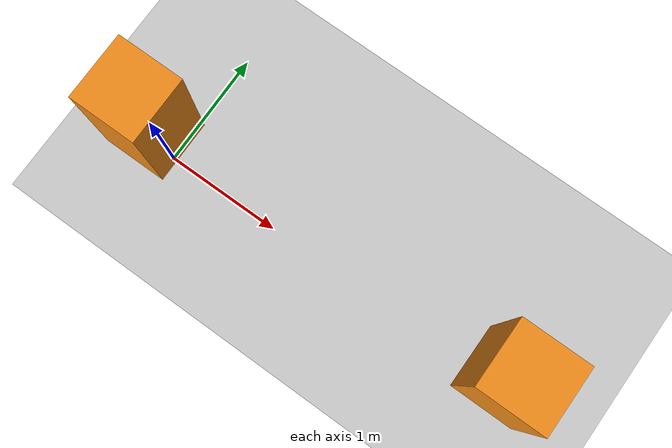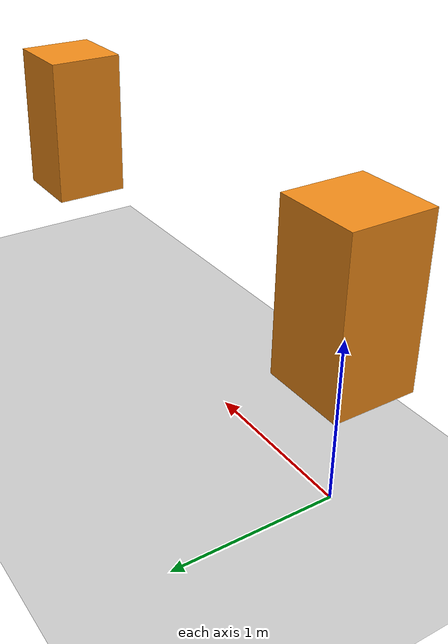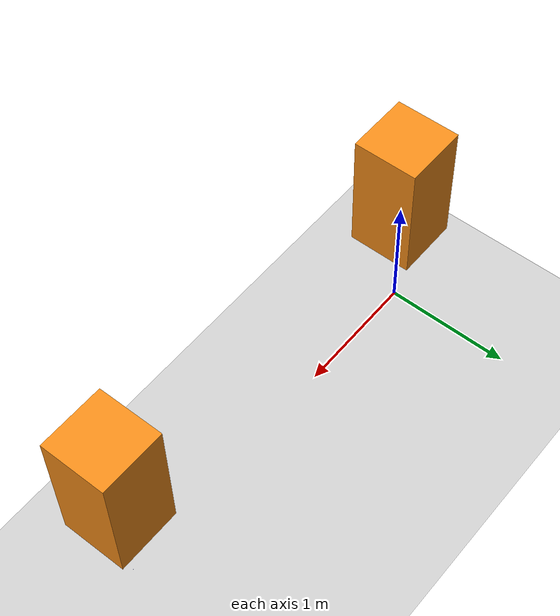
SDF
<sdf version="1.6">
 <world name="default">
  <light name="sun" type="directional">
   <pose>0 0 10 0 -0 0</pose>
   <diffuse>0.8 0.8 0.8 1</diffuse>
   <specular>0.1 0.1 0.1 1</specular>
   <attenuation>
    <range>1000</range>
    <constant>0.9</constant>
    <linear>0.01</linear>
    <quadratic>0.001</quadratic>
   </attenuation>
   <direction>-0.5 0.5 -1</direction>
  </light>
  <model name="ground_plane">
   <static>1</static>
   <link name="link">
    <collision name="collision">
     <geometry><plane><normal>0 0 1</normal><size>100 100</size></plane></geometry>
     <surface><friction><ode><mu>100</mu><mu2>50</mu2></ode></friction></surface>
    </collision>
    <visual name="visual">
     <cast_shadows>0</cast_shadows>
     <geometry><plane><normal>0 0 1</normal><size>100 100</size></plane></geometry>
     <material>
      <script><uri>file://media/materials/scripts/gazebo.material</uri><name>Gazebo/Grey</name></script>
     </material>
    </visual>
   </link>
  </model>
  <physics name="default_physics" default="0" type="ode">
   <max_step_size>0.01</max_step_size>
   <real_time_factor>1</real_time_factor>
   <real_time_update_rate>100</real_time_update_rate>
  </physics>
  <gravity>0 0 0</gravity>
  <magnetic_field>6e-06 2.3e-05 -4.2e-05</magnetic_field>
  <atmosphere type="adiabatic"/>
  <scene><ambient>0.4 0.4 0.4 1</ambient><background>0.7 0.7 0.7 1</background><shadows>1</shadows></scene>
  <spherical_coordinates>
   <surface_model>EARTH_WGS84</surface_model>
   <latitude_deg>0</latitude_deg>
   <longitude_deg>0</longitude_deg>
   <elevation>0</elevation>
   <heading_deg>0</heading_deg>
  </spherical_coordinates>
  <model name="floating_box">
   <link name="base_footprint">
    <inertial>
     <mass>100</mass>
     <inertia><ixx>100</ixx><ixy>0</ixy><ixz>0</ixz><iyy>100</iyy><iyz>0</iyz><izz>100</izz></inertia>
    </inertial>
    <collision name="base_footprint_fixed_joint_lump__base_link_collision">
     <pose>0 0 0.25 0 -0 0</pose>
     <geometry><cylinder><length>0.5</length><radius>0.25</radius></cylinder></geometry>
    </collision>
    <collision name="base_footprint_fixed_joint_lump__base_link_1_collision_1">
     <pose>0 0 0.25 0 -0 0</pose>
     <geometry><cylinder><length>0.5</length><radius>0.25</radius></cylinder></geometry>
    </collision>
    <visual name="base_footprint_visual">
     <geometry><box><size>0.001 0.001 0.001</size></box></geometry>
     <material>
      <script><name>Gazebo/Blue</name><uri>file://media/materials/scripts/gazebo.material</uri></script>
     </material>
    </visual>
    <visual name="base_footprint_fixed_joint_lump__base_link_visual_1">
     <pose>0 0 1.25 0 -0 0</pose>
     <geometry><box><size>0.5 0.5 1</size></box></geometry>
     <material>
      <script><name>Gazebo/Orange</name><uri>file://media/materials/scripts/gazebo.material</uri></script>
     </material>
    </visual>
    <visual name="base_footprint_fixed_joint_lump__base_link_1_visual_2">
     <pose>0 0 1.25 0 -0 0</pose>
     <geometry><box><size>0.5 0.5 1</size></box></geometry>
     <material>
      <script><name>Gazebo/Orange</name><uri>file://media/materials/scripts/gazebo.material</uri></script>
     </material>
    </visual>
   </link>
   <plugin name="gazebo_ros_force" filename="libgazebo_ros_force.so">
    <bodyName>base_footprint</bodyName>
    <link_name_>base_link</link_name_>
    <topicName>topic_name</topicName>
    <robotNamespace>/</robotNamespace>
   </plugin>
   <static>0</static>
   <plugin name="p3d_base_controller" filename="libgazebo_ros_p3d.so">
    <alwaysOn>true</alwaysOn>
    <updateRate>50.0</updateRate>
    <topicName>odom</topicName>
    <gaussianNoise>0.01</gaussianNoise>
    <frameName>world</frameName>
    <xyzOffsets>0 0 0</xyzOffsets>
    <rpyOffsets>0 0 0</rpyOffsets>
    <robotNamespace>/</robotNamespace>
    <bodyName>base_footprint</bodyName>
    <xyzOffset>0 0 -1.25</xyzOffset>
    <rpyOffset>0 -0 0</rpyOffset>
   </plugin>
  </model>
  <model name="floating_box_clone">
   <link name="base_footprint">
    <inertial>
     <mass>100</mass>
     <inertia><ixx>100</ixx><ixy>0</ixy><ixz>0</ixz><iyy>100</iyy><iyz>0</iyz><izz>100</izz></inertia>
    </inertial>
    <collision name="base_footprint_fixed_joint_lump__base_link_collision">
     <pose>0 0 0.25 0 -0 0</pose>
     <geometry><cylinder><length>0.5</length><radius>0.25</radius></cylinder></geometry>
    </collision>
    <collision name="base_footprint_fixed_joint_lump__base_link_1_collision_1">
     <pose>0 0 0.25 0 -0 0</pose>
     <geometry><cylinder><length>0.5</length><radius>0.25</radius></cylinder></geometry>
    </collision>
    <visual name="base_footprint_visual">
     <geometry><box><size>0.001 0.001 0.001</size></box></geometry>
     <material>
      <script><name>Gazebo/Blue</name><uri>file://media/materials/scripts/gazebo.material</uri></script>
     </material>
    </visual>
    <visual name="base_footprint_fixed_joint_lump__base_link_visual_1">
     <pose>0 0 1.25 0 -0 0</pose>
     <geometry><box><size>0.5 0.5 1</size></box></geometry>
     <material>
      <script><name>Gazebo/Orange</name><uri>file://media/materials/scripts/gazebo.material</uri></script>
     </material>
    </visual>
    <visual name="base_footprint_fixed_joint_lump__base_link_1_visual_2">
     <pose>0 0 1.25 0 -0 0</pose>
     <geometry><box><size>0.5 0.5 1</size></box></geometry>
     <material>
      <script><name>Gazebo/Orange</name><uri>file://media/materials/scripts/gazebo.material</uri></script>
     </material>
    </visual>
   </link>
   <plugin name="gazebo_ros_force" filename="libgazebo_ros_force.so">
    <bodyName>base_footprint</bodyName>
    <link_name_>base_link</link_name_>
    <topicName>topic_name</topicName>
    <robotNamespace>/</robotNamespace>
   </plugin>
   <static>0</static>
   <plugin name="p3d_base_controller" filename="libgazebo_ros_p3d.so">
    <alwaysOn>true</alwaysOn>
    <updateRate>50.0</updateRate>
    <topicName>odom</topicName>
    <gaussianNoise>0.01</gaussianNoise>
    <frameName>world</frameName>
    <xyzOffsets>0 0 0</xyzOffsets>
    <rpyOffsets>0 0 0</rpyOffsets>
    <robotNamespace>/</robotNamespace>
    <bodyName>base_footprint</bodyName>
    <xyzOffset>0 0 -1.25</xyzOffset>
    <rpyOffset>0 -0 0</rpyOffset>
   </plugin>
   <pose>2.99808 0.003103 0 0 -0 0</pose>
  </model>
 </world>
</sdf>
